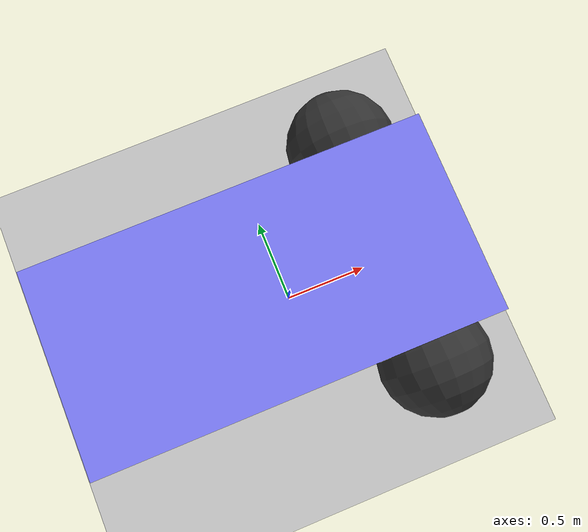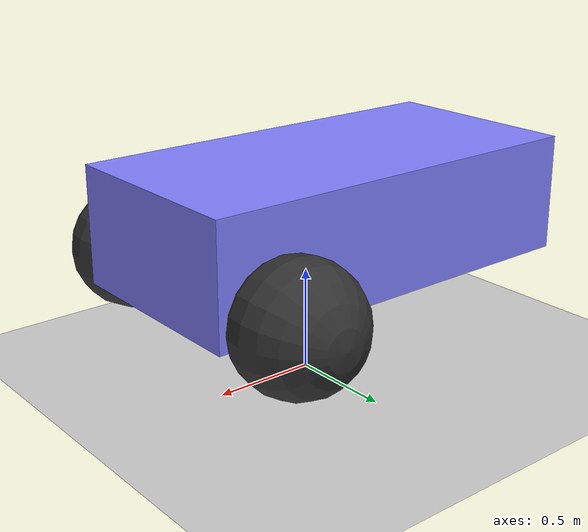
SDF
<?xml version="1.0" ?>
<sdf version='1.10'>
  <world name="vehicle_world">

    <!-- 키보드 조종용 시스템 플러그인 추가 -->
    <plugin filename="gz-sim-physics-system" name="gz::sim::systems::Physics"/>
    <plugin filename="gz-sim-user-commands-system" name="gz::sim::systems::UserCommands"/>
    <plugin filename="gz-sim-scene-broadcaster-system" name="gz::sim::systems::SceneBroadcaster"/>

    <!-- 1. 조명 (Sun) -->
    <light type="directional" name="sun">
      <cast_shadows>true</cast_shadows>
      <pose>0 0 10 0 0 0</pose>
      <diffuse>0.8 0.8 0.8 1</diffuse>
      <specular>0.2 0.2 0.2 1</specular>
      <direction>-0.5 0.1 -0.9</direction>
    </light>

    <!-- 2. 바닥 (Ground Plane) -->
    <model name="ground_plane">
      <static>true</static>
      <link name="link">
        <collision name="collision">
          <geometry>
            <plane>
              <normal>0 0 1</normal>
              <size>100 100</size>
            </plane>
          </geometry>
        </collision>
        <visual name="visual">
          <geometry>
            <plane>
              <normal>0 0 1</normal>
              <size>100 100</size>
            </plane>
          </geometry>
          <material>
            <ambient>0.8 0.8 0.8 1</ambient>
            <diffuse>0.8 0.8 0.8 1</diffuse>
          </material>
        </visual>
      </link>
    </model>

    <!-- 3. 로봇 모델 (vehicle_test) -->
    <model name='vehicle_test'>
      <!-- 로봇 전체 높이를 Z=0.6m 로 들어올림 -->
      <pose>0 0 0.6 0 0 0</pose>

      <link name="chassis">
        <pose>-0.151427 0 0.175 0 0 0</pose>
        <inertial>
          <mass>1.14395</mass>
          <inertia>
            <ixx>0.126164</ixx><ixy>0</ixy><ixz>0</ixz>
            <iyy>0.416519</iyy><iyz>0</iyz>
            <izz>0.481014</izz>
          </inertia>
        </inertial>
        <visual name="visual_chassis">
          <geometry>
            <box><size>2.01142 1 0.568726</size></box>
          </geometry>
          <material>
            <ambient>0.5 0.5 1.0 1</ambient>
            <diffuse>0.5 0.5 1.0 1</diffuse>
          </material>
        </visual>
        <collision name="collision_chassis">
          <geometry>
            <box><size>2.01142 1 0.568726</size></box>
          </geometry>
        </collision>
      </link>

      <link name='left_wheel'>
        <pose>0.554283 0.625029 -0.025 -1.5707 0 0</pose>
        <inertial>
          <mass>2</mass>
          <inertia>
            <ixx>0.145833</ixx><ixy>0</ixy><ixz>0</ixz>
            <iyy>0.145833</iyy><iyz>0</iyz>
            <izz>0.125</izz>
          </inertia>
        </inertial>
        <visual name='visual_left_wheel'>
          <geometry><sphere><radius>0.3</radius></sphere></geometry>
          <material><ambient>0.2 0.2 0.2 1</ambient><diffuse>0.2 0.2 0.2 1</diffuse></material>
        </visual>
        <collision name='collision_left_wheel'>
          <geometry><sphere><radius>0.3</radius></sphere></geometry>
        </collision>
      </link>

      <link name='right_wheel'>
        <pose>0.554282 -0.625029 -0.025 -1.5707 0 0</pose>
        <inertial>
          <mass>2</mass>
          <inertia>
            <ixx>0.145833</ixx><ixy>0</ixy><ixz>0</ixz>
            <iyy>0.145833</iyy><iyz>0</iyz>
            <izz>0.125</izz>
          </inertia>
        </inertial>
        <visual name='visual_right_wheel'>
          <geometry><sphere><radius>0.3</radius></sphere></geometry>
          <material><ambient>0.2 0.2 0.2 1</ambient><diffuse>0.2 0.2 0.2 1</diffuse></material>
        </visual>
        <collision name='collision_right_wheel'>
          <geometry><sphere><radius>0.3</radius></sphere></geometry>
        </collision>
      </link>

      <link name='caster'>
        <pose>-0.957138 0 -0.125 0 0 0</pose>
        <inertial>
          <mass>1</mass>
          <inertia>
            <ixx>0.1</ixx><ixy>0</ixy><ixz>0</ixz>
            <iyy>0.1</iyy><iyz>0</iyz>
            <izz>0.1</izz>
          </inertia>
        </inertial>
        <visual name='visual_caster'>
          <geometry><sphere><radius>0.2</radius></sphere></geometry>
          <material><ambient>0.2 0.2 0.2 1</ambient><diffuse>0.2 0.2 0.2 1</diffuse></material>
        </visual>
        <collision name='collision_caster'>
          <geometry><sphere><radius>0.2</radius></sphere></geometry>
        </collision>
      </link>

      <joint name='left_wheel_joint' type='revolute'>
        <parent>chassis</parent>
        <child>left_wheel</child>
        <axis><xyz>0 0 1</xyz></axis>
      </joint>

      <joint name='right_wheel_joint' type='revolute'>
        <parent>chassis</parent>
        <child>right_wheel</child>
        <axis><xyz>0 0 1</xyz></axis>
      </joint>

      <joint name='caster_wheel' type='ball'>
        <parent>chassis</parent>
        <child>caster</child>
      </joint>

      <!-- 주행용 DiffDrive 플러그인 -->
      <plugin filename="gz-sim-diff-drive-system" name="gz::sim::systems::DiffDrive">
        <left_joint>left_wheel_joint</left_joint>
        <right_joint>right_wheel_joint</right_joint>
        <wheel_separation>1.25</wheel_separation>
        <wheel_radius>0.3</wheel_radius>
        <topic>/cmd_vel</topic>
      </plugin>
    </model>

  </world>
</sdf>
